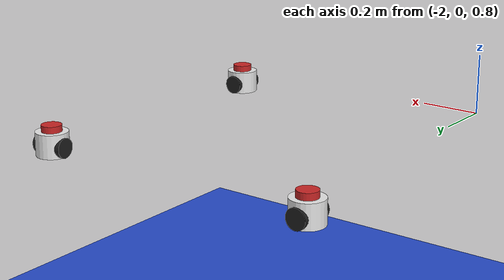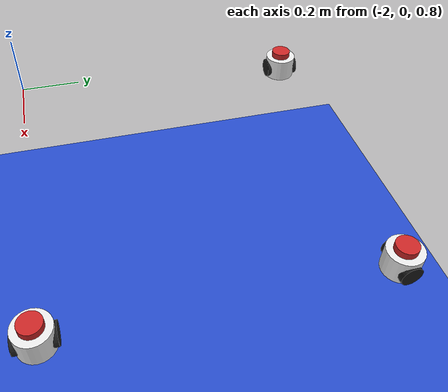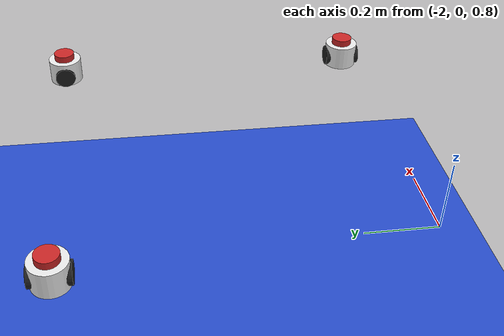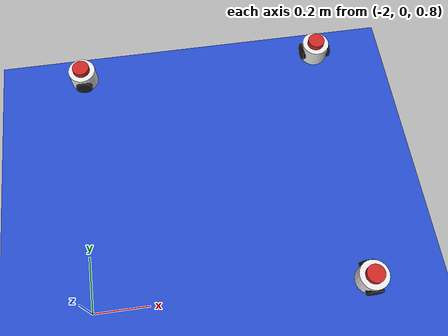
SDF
<sdf version="1.9">
 <world name="diff_drive">
  <physics name="default_physics" default="false" type="ode">
   <max_step_size>0.001</max_step_size>
   <real_time_factor>1</real_time_factor>
   <real_time_update_rate>1000</real_time_update_rate>
  </physics>
  <plugin name="ignition::gazebo::systems::Physics" filename="ignition-gazebo-physics-system"/>
  <plugin name="ignition::gazebo::systems::SceneBroadcaster" filename="ignition-gazebo-scene-broadcaster-system"/>
  <plugin name="gz::sim::systems::Sensors" filename="ignition-gazebo-sensors-system">
   <render_engine>ogre1</render_engine>
  </plugin>
  <gravity>0 0 -9.8</gravity>
  <magnetic_field>6e-06 2.3e-05 -4.2e-05</magnetic_field>
  <atmosphere type="adiabatic"/>
  <scene><ambient>0.4 0.4 0.4 1</ambient><background>0.7 0.7 0.7 1</background><shadows>true</shadows></scene>
  <model name="ground_plane">
   <static>true</static>
   <link name="link">
    <collision name="collision">
     <geometry><plane><normal>0 0 1</normal><size>100 100</size></plane></geometry>
     <surface><friction><ode><mu>100</mu><mu2>50</mu2></ode></friction></surface>
    </collision>
    <visual name="visual">
     <cast_shadows>false</cast_shadows>
     <geometry><plane><normal>0 0 1</normal><size>100 100</size></plane></geometry>
     <material>
      <script><uri>file://media/materials/scripts/gazebo.material</uri><name>Gazebo/Blue</name></script>
      <shader type="pixel"><normal_map>__default__</normal_map></shader>
      <ambient>1 1 1 1</ambient>
      <diffuse>1 1 1 1</diffuse>
      <specular>0 0 0 1</specular>
      <emissive>0 0 0 1</emissive>
     </material>
    </visual>
    <inertial>
     <mass>1</mass>
     <inertia><ixx>1</ixx><ixy>0</ixy><ixz>0</ixz><iyy>1</iyy><iyz>0</iyz><izz>1</izz></inertia>
    </inertial>
   </link>
  </model>
  <include>
   <uri>file://src/robot_sim/gazebo/kris_robot</uri>
   <name>kris_robot</name>
   <pose>-1.0 1.0 0.75 0 -0 3.14</pose>
  </include>
  <include>
   <uri>file://src/robot_sim/gazebo/kris_robot1</uri>
   <name>kris_robot1</name>
   <pose>-2.0 1.0 0.75 0 -0 3.14</pose>
  </include>
  <include>
   <uri>file://src/robot_sim/gazebo/kris_robot2</uri>
   <name>kris_robot2</name>
   <pose>-1.0 0 0.75 0 -0 3.14</pose>
  </include>
  <light name="sun" type="directional">
   <pose>0 0 10 0 -0 0</pose>
   <intensity>1</intensity>
   <direction>-0.5 0.1 -0.9</direction>
   <diffuse>0.8 0.8 0.8 1</diffuse>
   <specular>0.2 0.2 0.2 1</specular>
   <attenuation>
    <range>1000</range>
    <linear>0.01</linear>
    <constant>0.90000000000000002</constant>
    <quadratic>0.001</quadratic>
   </attenuation>
   <spot><inner_angle>0</inner_angle><outer_angle>0</outer_angle><falloff>0</falloff></spot>
  </light>
 </world>
</sdf>

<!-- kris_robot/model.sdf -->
<sdf version='1.7'>
  <model name='kris_robot1'>
    <link name='kris_robot1_base_link'>
      <pose>0 0 0 0 0 0</pose>
      <inertial>
        <mass>0.25</mass>
        <inertia>
          <ixx>0.0003223</ixx>
          <ixy>0</ixy>
          <ixz>0</ixz>
          <iyy>0.0003223</iyy>
          <iyz>0</iyz>
          <izz>0.0003781</izz>
        </inertia>
        <pose>0 0 0 0 0 0</pose>
        <origin xyz='0 0 0' rpy='0 0 0'/>
      </inertial>
      <self_collide>0</self_collide>
      <enable_wind>0</enable_wind>
      <kinematic>0</kinematic>
      <gravity>1</gravity>
      <visual name='visual'>
        <geometry>
          <cylinder>
            <length>0.08</length>
            <radius>0.055</radius>
          </cylinder>
        </geometry>
        <material>
          <script>
            <uri>file://media/materials/scripts/gazebo.material</uri>
            <name>Gazebo/White</name>
          </script>
          <shader type='pixel'>
            <normal_map>__default__</normal_map>
          </shader>
          <ambient>1 1 1 1</ambient>
          <diffuse>1 1 1 1</diffuse>
          <specular>0 0 0 1</specular>
          <emissive>0 0 0 1</emissive>
        </material>
        <pose>0 0 0.008 0 0 0</pose>
        <transparency>0</transparency>
        <cast_shadows>1</cast_shadows>
        <origin rpy='0 0 0' xyz='0 0 0'/>
      </visual>
      <collision name='collision'>
        <laser_retro>0</laser_retro>
        <max_contacts>10</max_contacts>
        <pose>0 0 0.008 0 0 0</pose>
        <geometry>
          <cylinder>
            <radius>0.055</radius>
            <length>0.08</length>
          </cylinder>
        </geometry>
        <surface>
          <friction>
            <ode>
              <mu>1</mu>
              <mu2>1</mu2>
              <fdir1>0 0 0</fdir1>
              <slip1>0</slip1>
              <slip2>0</slip2>
            </ode>
            <torsional>
              <coefficient>1</coefficient>
              <patch_radius>0</patch_radius>
              <surface_radius>0</surface_radius>
              <use_patch_radius>1</use_patch_radius>
              <ode>
                <slip>0</slip>
              </ode>
            </torsional>
          </friction>
          <bounce>
            <restitution_coefficient>0</restitution_coefficient>
            <threshold>1e+06</threshold>
          </bounce>
          <contact>
            <collide_without_contact>0</collide_without_contact>
            <collide_without_contact_bitmask>1</collide_without_contact_bitmask>
            <collide_bitmask>1</collide_bitmask>
            <ode>
              <soft_cfm>0</soft_cfm>
              <soft_erp>0.2</soft_erp>
              <kp>1e+13</kp>
              <kd>1</kd>
              <max_vel>0.01</max_vel>
              <min_depth>0</min_depth>
            </ode>
            <bullet>
              <split_impulse>1</split_impulse>
              <split_impulse_penetration_threshold>-0.01</split_impulse_penetration_threshold>
              <soft_cfm>0</soft_cfm>
              <soft_erp>0.2</soft_erp>
              <kp>1e+13</kp>
              <kd>1</kd>
            </bullet>
          </contact>
        </surface>
      </collision>
    </link>
    <link name='lidar_link'>
      <inertial>
        <mass>0.047</mass>
        <inertia>
          <ixx>2.716e-05</ixx>
          <ixy>0</ixy>
          <ixz>0</ixz>
          <iyy>1.363e-05</iyy>
          <iyz>0</iyz>
          <izz>1.363e-05</izz>
        </inertia>
        <pose>0 0 0.1 0 0 0</pose>
        <origin xyz='0 0 0' rpy='0 0 0'/>
      </inertial>
      <self_collide>0</self_collide>
      <enable_wind>0</enable_wind>
      <kinematic>0</kinematic>
      <pose>0 0 0 0 0 0</pose>
      <gravity>1</gravity>
      <visual name='visual'>
        <geometry>
          <cylinder>
            <length>0.03</length>
            <radius>0.034</radius>
          </cylinder>
        </geometry>
        <material>
          <script>
            <uri>file://media/materials/scripts/gazebo.material</uri>
            <name>Gazebo/Red</name>
          </script>
          <shader type='pixel'>
            <normal_map>__default__</normal_map>
          </shader>
          <ambient>1 0 0 1</ambient>
          <diffuse>1 0 0 1</diffuse>
          <specular>0.1 0.1 0.1 1</specular>
          <emissive>0 0 0 1</emissive>
        </material>
        <pose>0 0 0.055 0 0 0</pose>
        <transparency>0</transparency>
        <cast_shadows>1</cast_shadows>
        <origin xyz='0 0 0' rpy='0 0 0'/>
      </visual>
      <sensor name='gpu_lidar' type='gpu_lidar'>
        <pose>0 0 0.055 0 0 0</pose>
        <topic>/kris_robot1/scan</topic>
        <gz_frame_id>kris_robot1_base_link</gz_frame_id>
        <update_rate>5</update_rate>
        <enable_metrics>false</enable_metrics>
        <lidar>
          <scan>
            <horizontal>
              <samples>450</samples>
              <resolution>1</resolution>
              <min_angle>0</min_angle>
              <max_angle>6.28</max_angle>
            </horizontal>
            <vertical>
              <samples>1</samples>
              <min_angle>0</min_angle>
              <max_angle>0</max_angle>
              <resolution>1</resolution>
            </vertical>
          </scan>
          <range>
            <min>0.02</min>
            <max>12</max>
            <resolution>0.01</resolution>
          </range>
        </lidar>
      </sensor>
      <collision name='collision'>
        <laser_retro>0</laser_retro>
        <max_contacts>10</max_contacts>
        <pose>0 0 0.055 0 0 0</pose>
        <geometry>
          <cylinder>
            <radius>0.034</radius>
            <length>0.03</length>
          </cylinder>
        </geometry>
        <surface>
          <friction>
            <ode>
              <mu>1</mu>
              <mu2>1</mu2>
              <fdir1>0 0 0</fdir1>
              <slip1>0</slip1>
              <slip2>0</slip2>
            </ode>
            <torsional>
              <coefficient>1</coefficient>
              <patch_radius>0</patch_radius>
              <surface_radius>0</surface_radius>
              <use_patch_radius>1</use_patch_radius>
              <ode>
                <slip>0</slip>
              </ode>
            </torsional>
          </friction>
          <bounce>
            <restitution_coefficient>0</restitution_coefficient>
            <threshold>1e+06</threshold>
          </bounce>
          <contact>
            <collide_without_contact>0</collide_without_contact>
            <collide_without_contact_bitmask>1</collide_without_contact_bitmask>
            <collide_bitmask>1</collide_bitmask>
            <ode>
              <soft_cfm>0</soft_cfm>
              <soft_erp>0.2</soft_erp>
              <kp>1e+13</kp>
              <kd>1</kd>
              <max_vel>0.01</max_vel>
              <min_depth>0</min_depth>
            </ode>
            <bullet>
              <split_impulse>1</split_impulse>
              <split_impulse_penetration_threshold>-0.01</split_impulse_penetration_threshold>
              <soft_cfm>0</soft_cfm>
              <soft_erp>0.2</soft_erp>
              <kp>1e+13</kp>
              <kd>1</kd>
            </bullet>
          </contact>
        </surface>
      </collision>
    </link>
    <link name='lwheel'>
      <pose>0.045 0 0 -1.65698 1.57079 1.57</pose>
      <inertial>
        <mass>0.1</mass>
        <inertia>
          <ixx>5.281e-05</ixx>
          <ixy>0</ixy>
          <ixz>0</ixz>
          <iyy>3.161e-05</iyy>
          <iyz>0</iyz>
          <izz>3.781e-05</izz>
        </inertia>
        <pose>0 0 0 0 0 0</pose>
        <origin xyz='1.5708 1.5708 0' rpy='0 0.050 0.02'/>
      </inertial>
      <self_collide>0</self_collide>
      <enable_wind>0</enable_wind>
      <kinematic>0</kinematic>
      <gravity>1</gravity>
      <visual name='visual'>
        <geometry>
          <cylinder>
            <radius>0.0335</radius>
            <length>0.0265</length>
          </cylinder>
        </geometry>
        <material>
          <script>
            <uri>file://media/materials/scripts/gazebo.material</uri>
            <name>Gazebo/Black</name>
          </script>
          <shader type='pixel'>
            <normal_map>__default__</normal_map>
          </shader>
          <ambient>0 0 0 1</ambient>
          <diffuse>0 0 0 1</diffuse>
          <specular>0.1 0.1 0.1 1</specular>
          <emissive>0 0 0 1</emissive>
        </material>
        <pose>0 0 0 0 0 0</pose>
        <transparency>0</transparency>
        <cast_shadows>1</cast_shadows>
        <origin rpy='1.5708 1.5708 0' xyz='0 0.050 0.02'/>
      </visual>
      <collision name='collision'>
        <laser_retro>0</laser_retro>
        <max_contacts>10</max_contacts>
        <pose>0 0 0 0 0 0</pose>
        <geometry>
          <sphere>
            <radius>0.0335</radius>
          </sphere>
        </geometry>
        <surface>
          <friction>
            <ode>
              <mu>1</mu>
              <mu2>1</mu2>
              <fdir1>0 0 0</fdir1>
              <slip1>0</slip1>
              <slip2>0</slip2>
            </ode>
            <torsional>
              <coefficient>1</coefficient>
              <patch_radius>0</patch_radius>
              <surface_radius>0</surface_radius>
              <use_patch_radius>1</use_patch_radius>
              <ode>
                <slip>0</slip>
              </ode>
            </torsional>
          </friction>
          <bounce>
            <restitution_coefficient>0</restitution_coefficient>
            <threshold>1e+06</threshold>
          </bounce>
          <contact>
            <collide_without_contact>0</collide_without_contact>
            <collide_without_contact_bitmask>1</collide_without_contact_bitmask>
            <collide_bitmask>1</collide_bitmask>
            <ode>
              <soft_cfm>0</soft_cfm>
              <soft_erp>0.2</soft_erp>
              <kp>1e+13</kp>
              <kd>1</kd>
              <max_vel>0.01</max_vel>
              <min_depth>0</min_depth>
            </ode>
            <bullet>
              <split_impulse>1</split_impulse>
              <split_impulse_penetration_threshold>-0.01</split_impulse_penetration_threshold>
              <soft_cfm>0</soft_cfm>
              <soft_erp>0.2</soft_erp>
              <kp>1e+13</kp>
              <kd>1</kd>
            </bullet>
          </contact>
        </surface>
      </collision>
    </link>
    <link name='rwheel'>
      <pose>-0.045 0 0 -1.65698 1.57079 1.57</pose>
      <inertial>
        <mass>0.1</mass>
        <inertia>
          <ixx>5.281e-05</ixx>
          <ixy>0</ixy>
          <ixz>0</ixz>
          <iyy>3.161e-05</iyy>
          <iyz>0</iyz>
          <izz>3.781e-05</izz>
        </inertia>
        <pose>0 0 0 0 0 0</pose>
        <origin xyz='1.5708 1.5708 0' rpy='0 -0.050 0.02'/>
      </inertial>
      <self_collide>0</self_collide>
      <enable_wind>0</enable_wind>
      <kinematic>0</kinematic>
      <gravity>1</gravity>
      <visual name='visual'>
        <geometry>
          <cylinder>
            <radius>0.0335</radius>
            <length>0.0265</length>
          </cylinder>
        </geometry>
        <material>
          <script>
            <uri>file://media/materials/scripts/gazebo.material</uri>
            <name>Gazebo/Black</name>
          </script>
          <shader type='pixel'>
            <normal_map>__default__</normal_map>
          </shader>
          <ambient>0 0 0 1</ambient>
          <diffuse>0 0 0 1</diffuse>
          <specular>0.1 0.1 0.1 1</specular>
          <emissive>0 0 0 1</emissive>
        </material>
        <pose>0 0 0 0 0 0</pose>
        <transparency>0</transparency>
        <cast_shadows>1</cast_shadows>
        <origin rpy='1.5708 1.5708 0' xyz='0 -0.050 0.02'/>
      </visual>
      <collision name='collision'>
        <laser_retro>0</laser_retro>
        <max_contacts>10</max_contacts>
        <pose>0 0 0 0 0 0</pose>
        <geometry>
          <sphere>
            <radius>0.0335</radius>
          </sphere>
        </geometry>
        <surface>
          <friction>
            <ode>
              <mu>1</mu>
              <mu2>1</mu2>
              <fdir1>0 0 0</fdir1>
              <slip1>0</slip1>
              <slip2>0</slip2>
            </ode>
            <torsional>
              <coefficient>1</coefficient>
              <patch_radius>0</patch_radius>
              <surface_radius>0</surface_radius>
              <use_patch_radius>1</use_patch_radius>
              <ode>
                <slip>0</slip>
              </ode>
            </torsional>
          </friction>
          <bounce>
            <restitution_coefficient>0</restitution_coefficient>
            <threshold>1e+06</threshold>
          </bounce>
          <contact>
            <collide_without_contact>0</collide_without_contact>
            <collide_without_contact_bitmask>1</collide_without_contact_bitmask>
            <collide_bitmask>1</collide_bitmask>
            <ode>
              <soft_cfm>0</soft_cfm>
              <soft_erp>0.2</soft_erp>
              <kp>1e+13</kp>
              <kd>1</kd>
              <max_vel>0.01</max_vel>
              <min_depth>0</min_depth>
            </ode>
            <bullet>
              <split_impulse>1</split_impulse>
              <split_impulse_penetration_threshold>-0.01</split_impulse_penetration_threshold>
              <soft_cfm>0</soft_cfm>
              <soft_erp>0.2</soft_erp>
              <kp>1e+13</kp>
              <kd>1</kd>
            </bullet>
          </contact>
        </surface>
      </collision>
    </link>
    <joint name='laser_joint' type='fixed'>
      <parent>kris_robot1_base_link</parent>
      <child>lidar_link</child>
      <pose>0 0 0.05 0 0 0</pose>
    </joint>
    <joint name='left_wheel_joint' type='revolute'>
      <parent>kris_robot1_base_link</parent>
      <child>lwheel</child>
      <pose>0 0 0 0 0 0</pose>
      <axis>
        <xyz>0 0 1</xyz>
        <limit>
          <lower>-1.79769e+308</lower>
          <upper>1.79769e+308</upper>
          <effort>-1</effort>
          <velocity>-1</velocity>
        </limit>
        <dynamics>
          <spring_reference>0</spring_reference>
          <spring_stiffness>0</spring_stiffness>
          <damping>0</damping>
          <friction>0</friction>
        </dynamics>
      </axis>
      <physics>
        <ode>
          <limit>
            <cfm>0</cfm>
            <erp>0.2</erp>
          </limit>
          <suspension>
            <cfm>0</cfm>
            <erp>0.2</erp>
          </suspension>
        </ode>
      </physics>
    </joint>
    <joint name='right_wheel_joint' type='revolute'>
      <parent>kris_robot1_base_link</parent>
      <child>rwheel</child>
      <pose>0 0 0 0 0 0</pose>
      <axis>
        <xyz>0 0 1</xyz>
        <limit>
          <lower>-1.79769e+308</lower>
          <upper>1.79769e+308</upper>
          <effort>-1</effort>
          <velocity>-1</velocity>
        </limit>
        <dynamics>
          <spring_reference>0</spring_reference>
          <spring_stiffness>0</spring_stiffness>
          <damping>0</damping>
          <friction>0</friction>
        </dynamics>
      </axis>
      <physics>
        <ode>
          <limit>
            <cfm>0</cfm>
            <erp>0.2</erp>
          </limit>
          <suspension>
            <cfm>0</cfm>
            <erp>0.2</erp>
          </suspension>
        </ode>
      </physics>
    </joint>
    <static>false</static>
    <self_collide>false</self_collide>
    <plugin name='gz::sim::systems::DiffDrive' filename='ignition-gazebo-diff-drive-system'>
      <odom_publish_frequency>2</odom_publish_frequency>
      <left_joint>left_wheel_joint</left_joint>
      <right_joint>right_wheel_joint</right_joint>
      <wheel_separation>0.08</wheel_separation>
      <wheel_radius>0.0325</wheel_radius>
      <topic>/kris_robot1/cmd_vel</topic>
      <odom_topic>/kris_robot1/odom</odom_topic>
      <frame_id>kris_robot1_odom</frame_id>
      <child_frame_id>kris_robot1_base_link</child_frame_id>
      <max_linear_velocity>0.5</max_linear_velocity>
      <max_angular_velocity>0.4</max_angular_velocity>
    </plugin>
  </model>
</sdf>

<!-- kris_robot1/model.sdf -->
<sdf version='1.7'>
  <model name='kris_robot2'>
    <link name='kris_robot2_base_link'>
      <pose>0 0 0 0 0 0</pose>
      <inertial>
        <mass>0.25</mass>
        <inertia>
          <ixx>0.0003223</ixx>
          <ixy>0</ixy>
          <ixz>0</ixz>
          <iyy>0.0003223</iyy>
          <iyz>0</iyz>
          <izz>0.0003781</izz>
        </inertia>
        <pose>0 0 0 0 0 0</pose>
        <origin xyz='0 0 0' rpy='0 0 0'/>
      </inertial>
      <self_collide>0</self_collide>
      <enable_wind>0</enable_wind>
      <kinematic>0</kinematic>
      <gravity>1</gravity>
      <visual name='visual'>
        <geometry>
          <cylinder>
            <length>0.08</length>
            <radius>0.055</radius>
          </cylinder>
        </geometry>
        <material>
          <script>
            <uri>file://media/materials/scripts/gazebo.material</uri>
            <name>Gazebo/White</name>
          </script>
          <shader type='pixel'>
            <normal_map>__default__</normal_map>
          </shader>
          <ambient>1 1 1 1</ambient>
          <diffuse>1 1 1 1</diffuse>
          <specular>0 0 0 1</specular>
          <emissive>0 0 0 1</emissive>
        </material>
        <pose>0 0 0.008 0 0 0</pose>
        <transparency>0</transparency>
        <cast_shadows>1</cast_shadows>
        <origin rpy='0 0 0' xyz='0 0 0'/>
      </visual>
      <collision name='collision'>
        <laser_retro>0</laser_retro>
        <max_contacts>10</max_contacts>
        <pose>0 0 0.008 0 0 0</pose>
        <geometry>
          <cylinder>
            <radius>0.055</radius>
            <length>0.08</length>
          </cylinder>
        </geometry>
        <surface>
          <friction>
            <ode>
              <mu>1</mu>
              <mu2>1</mu2>
              <fdir1>0 0 0</fdir1>
              <slip1>0</slip1>
              <slip2>0</slip2>
            </ode>
            <torsional>
              <coefficient>1</coefficient>
              <patch_radius>0</patch_radius>
              <surface_radius>0</surface_radius>
              <use_patch_radius>1</use_patch_radius>
              <ode>
                <slip>0</slip>
              </ode>
            </torsional>
          </friction>
          <bounce>
            <restitution_coefficient>0</restitution_coefficient>
            <threshold>1e+06</threshold>
          </bounce>
          <contact>
            <collide_without_contact>0</collide_without_contact>
            <collide_without_contact_bitmask>1</collide_without_contact_bitmask>
            <collide_bitmask>1</collide_bitmask>
            <ode>
              <soft_cfm>0</soft_cfm>
              <soft_erp>0.2</soft_erp>
              <kp>1e+13</kp>
              <kd>1</kd>
              <max_vel>0.01</max_vel>
              <min_depth>0</min_depth>
            </ode>
            <bullet>
              <split_impulse>1</split_impulse>
              <split_impulse_penetration_threshold>-0.01</split_impulse_penetration_threshold>
              <soft_cfm>0</soft_cfm>
              <soft_erp>0.2</soft_erp>
              <kp>1e+13</kp>
              <kd>1</kd>
            </bullet>
          </contact>
        </surface>
      </collision>
    </link>
    <link name='lidar_link'>
      <inertial>
        <mass>0.047</mass>
        <inertia>
          <ixx>2.716e-05</ixx>
          <ixy>0</ixy>
          <ixz>0</ixz>
          <iyy>1.363e-05</iyy>
          <iyz>0</iyz>
          <izz>1.363e-05</izz>
        </inertia>
        <pose>0 0 0.1 0 0 0</pose>
        <origin xyz='0 0 0' rpy='0 0 0'/>
      </inertial>
      <self_collide>0</self_collide>
      <enable_wind>0</enable_wind>
      <kinematic>0</kinematic>
      <pose>0 0 0 0 0 0</pose>
      <gravity>1</gravity>
      <visual name='visual'>
        <geometry>
          <cylinder>
            <length>0.03</length>
            <radius>0.034</radius>
          </cylinder>
        </geometry>
        <material>
          <script>
            <uri>file://media/materials/scripts/gazebo.material</uri>
            <name>Gazebo/Red</name>
          </script>
          <shader type='pixel'>
            <normal_map>__default__</normal_map>
          </shader>
          <ambient>1 0 0 1</ambient>
          <diffuse>1 0 0 1</diffuse>
          <specular>0.1 0.1 0.1 1</specular>
          <emissive>0 0 0 1</emissive>
        </material>
        <pose>0 0 0.055 0 0 0</pose>
        <transparency>0</transparency>
        <cast_shadows>1</cast_shadows>
        <origin xyz='0 0 0' rpy='0 0 0'/>
      </visual>
      <sensor name='gpu_lidar' type='gpu_lidar'>
        <pose>0 0 0.055 0 0 0</pose>
        <topic>/kris_robot2/scan</topic>
        <gz_frame_id>kris_robot2_base_link</gz_frame_id>
        <update_rate>5</update_rate>
        <enable_metrics>false</enable_metrics>
        <lidar>
          <scan>
            <horizontal>
              <samples>450</samples>
              <resolution>1</resolution>
              <min_angle>0</min_angle>
              <max_angle>6.28</max_angle>
            </horizontal>
            <vertical>
              <samples>1</samples>
              <min_angle>0</min_angle>
              <max_angle>0</max_angle>
              <resolution>1</resolution>
            </vertical>
          </scan>
          <range>
            <min>0.02</min>
            <max>12</max>
            <resolution>0.01</resolution>
          </range>
        </lidar>
      </sensor>
      <collision name='collision'>
        <laser_retro>0</laser_retro>
        <max_contacts>10</max_contacts>
        <pose>0 0 0.055 0 0 0</pose>
        <geometry>
          <cylinder>
            <radius>0.034</radius>
            <length>0.03</length>
          </cylinder>
        </geometry>
        <surface>
          <friction>
            <ode>
              <mu>1</mu>
              <mu2>1</mu2>
              <fdir1>0 0 0</fdir1>
              <slip1>0</slip1>
              <slip2>0</slip2>
            </ode>
            <torsional>
              <coefficient>1</coefficient>
              <patch_radius>0</patch_radius>
              <surface_radius>0</surface_radius>
              <use_patch_radius>1</use_patch_radius>
              <ode>
                <slip>0</slip>
              </ode>
            </torsional>
          </friction>
          <bounce>
            <restitution_coefficient>0</restitution_coefficient>
            <threshold>1e+06</threshold>
          </bounce>
          <contact>
            <collide_without_contact>0</collide_without_contact>
            <collide_without_contact_bitmask>1</collide_without_contact_bitmask>
            <collide_bitmask>1</collide_bitmask>
            <ode>
              <soft_cfm>0</soft_cfm>
              <soft_erp>0.2</soft_erp>
              <kp>1e+13</kp>
              <kd>1</kd>
              <max_vel>0.01</max_vel>
              <min_depth>0</min_depth>
            </ode>
            <bullet>
              <split_impulse>1</split_impulse>
              <split_impulse_penetration_threshold>-0.01</split_impulse_penetration_threshold>
              <soft_cfm>0</soft_cfm>
              <soft_erp>0.2</soft_erp>
              <kp>1e+13</kp>
              <kd>1</kd>
            </bullet>
          </contact>
        </surface>
      </collision>
    </link>
    <link name='lwheel'>
      <pose>0 0.045 0 -1.65698 1.57079 -0.087623</pose>
      <inertial>
        <mass>0.1</mass>
        <inertia>
          <ixx>5.281e-05</ixx>
          <ixy>0</ixy>
          <ixz>0</ixz>
          <iyy>3.161e-05</iyy>
          <iyz>0</iyz>
          <izz>3.781e-05</izz>
        </inertia>
        <pose>0 0 0 0 0 0</pose>
        <origin xyz='1.5708 1.5708 0' rpy='0 0.050 0.02'/>
      </inertial>
      <self_collide>0</self_collide>
      <enable_wind>0</enable_wind>
      <kinematic>0</kinematic>
      <gravity>1</gravity>
      <visual name='visual'>
        <geometry>
          <cylinder>
            <radius>0.0335</radius>
            <length>0.0265</length>
          </cylinder>
        </geometry>
        <material>
          <script>
            <uri>file://media/materials/scripts/gazebo.material</uri>
            <name>Gazebo/Black</name>
          </script>
          <shader type='pixel'>
            <normal_map>__default__</normal_map>
          </shader>
          <ambient>0 0 0 1</ambient>
          <diffuse>0 0 0 1</diffuse>
          <specular>0.1 0.1 0.1 1</specular>
          <emissive>0 0 0 1</emissive>
        </material>
        <pose>0 0 0 0 0 0</pose>
        <transparency>0</transparency>
        <cast_shadows>1</cast_shadows>
        <origin rpy='1.5708 1.5708 0' xyz='0 0.050 0.02'/>
      </visual>
      <collision name='collision'>
        <laser_retro>0</laser_retro>
        <max_contacts>10</max_contacts>
        <pose>0 0 0 0 0 0</pose>
        <geometry>
          <sphere>
            <radius>0.0335</radius>
          </sphere>
        </geometry>
        <surface>
          <friction>
            <ode>
              <mu>1</mu>
              <mu2>1</mu2>
              <fdir1>0 0 0</fdir1>
              <slip1>0</slip1>
              <slip2>0</slip2>
            </ode>
            <torsional>
              <coefficient>1</coefficient>
              <patch_radius>0</patch_radius>
              <surface_radius>0</surface_radius>
              <use_patch_radius>1</use_patch_radius>
              <ode>
                <slip>0</slip>
              </ode>
            </torsional>
          </friction>
          <bounce>
            <restitution_coefficient>0</restitution_coefficient>
            <threshold>1e+06</threshold>
          </bounce>
          <contact>
            <collide_without_contact>0</collide_without_contact>
            <collide_without_contact_bitmask>1</collide_without_contact_bitmask>
            <collide_bitmask>1</collide_bitmask>
            <ode>
              <soft_cfm>0</soft_cfm>
              <soft_erp>0.2</soft_erp>
              <kp>1e+13</kp>
              <kd>1</kd>
              <max_vel>0.01</max_vel>
              <min_depth>0</min_depth>
            </ode>
            <bullet>
              <split_impulse>1</split_impulse>
              <split_impulse_penetration_threshold>-0.01</split_impulse_penetration_threshold>
              <soft_cfm>0</soft_cfm>
              <soft_erp>0.2</soft_erp>
              <kp>1e+13</kp>
              <kd>1</kd>
            </bullet>
          </contact>
        </surface>
      </collision>
    </link>
    <link name='rwheel'>
      <pose>0 -0.045 0 -1.65698 1.57079 -0.087623</pose>
      <inertial>
        <mass>0.1</mass>
        <inertia>
          <ixx>5.281e-05</ixx>
          <ixy>0</ixy>
          <ixz>0</ixz>
          <iyy>3.161e-05</iyy>
          <iyz>0</iyz>
          <izz>3.781e-05</izz>
        </inertia>
        <pose>0 0 0 0 0 0</pose>
        <origin xyz='1.5708 1.5708 0' rpy='0 -0.050 0.02'/>
      </inertial>
      <self_collide>0</self_collide>
      <enable_wind>0</enable_wind>
      <kinematic>0</kinematic>
      <gravity>1</gravity>
      <visual name='visual'>
        <geometry>
          <cylinder>
            <radius>0.0335</radius>
            <length>0.0265</length>
          </cylinder>
        </geometry>
        <material>
          <script>
            <uri>file://media/materials/scripts/gazebo.material</uri>
            <name>Gazebo/Black</name>
          </script>
          <shader type='pixel'>
            <normal_map>__default__</normal_map>
          </shader>
          <ambient>0 0 0 1</ambient>
          <diffuse>0 0 0 1</diffuse>
          <specular>0.1 0.1 0.1 1</specular>
          <emissive>0 0 0 1</emissive>
        </material>
        <pose>0 0 0 0 0 0</pose>
        <transparency>0</transparency>
        <cast_shadows>1</cast_shadows>
        <origin rpy='1.5708 1.5708 0' xyz='0 -0.050 0.02'/>
      </visual>
      <collision name='collision'>
        <laser_retro>0</laser_retro>
        <max_contacts>10</max_contacts>
        <pose>0 0 0 0 0 0</pose>
        <geometry>
          <sphere>
            <radius>0.0335</radius>
          </sphere>
        </geometry>
        <surface>
          <friction>
            <ode>
              <mu>1</mu>
              <mu2>1</mu2>
              <fdir1>0 0 0</fdir1>
              <slip1>0</slip1>
              <slip2>0</slip2>
            </ode>
            <torsional>
              <coefficient>1</coefficient>
              <patch_radius>0</patch_radius>
              <surface_radius>0</surface_radius>
              <use_patch_radius>1</use_patch_radius>
              <ode>
                <slip>0</slip>
              </ode>
            </torsional>
          </friction>
          <bounce>
            <restitution_coefficient>0</restitution_coefficient>
            <threshold>1e+06</threshold>
          </bounce>
          <contact>
            <collide_without_contact>0</collide_without_contact>
            <collide_without_contact_bitmask>1</collide_without_contact_bitmask>
            <collide_bitmask>1</collide_bitmask>
            <ode>
              <soft_cfm>0</soft_cfm>
              <soft_erp>0.2</soft_erp>
              <kp>1e+13</kp>
              <kd>1</kd>
              <max_vel>0.01</max_vel>
              <min_depth>0</min_depth>
            </ode>
            <bullet>
              <split_impulse>1</split_impulse>
              <split_impulse_penetration_threshold>-0.01</split_impulse_penetration_threshold>
              <soft_cfm>0</soft_cfm>
              <soft_erp>0.2</soft_erp>
              <kp>1e+13</kp>
              <kd>1</kd>
            </bullet>
          </contact>
        </surface>
      </collision>
    </link>
    <joint name='laser_joint' type='fixed'>
      <parent>kris_robot2_base_link</parent>
      <child>lidar_link</child>
      <pose>0 0 0.05 0 0 0</pose>
    </joint>
    <joint name='left_wheel_joint' type='revolute'>
      <parent>kris_robot2_base_link</parent>
      <child>lwheel</child>
      <pose>0 0 0 0 0 0</pose>
      <axis>
        <xyz>0 0 1</xyz>
        <limit>
          <lower>-1.79769e+308</lower>
          <upper>1.79769e+308</upper>
          <effort>-1</effort>
          <velocity>-1</velocity>
        </limit>
        <dynamics>
          <spring_reference>0</spring_reference>
          <spring_stiffness>0</spring_stiffness>
          <damping>0</damping>
          <friction>0</friction>
        </dynamics>
      </axis>
      <physics>
        <ode>
          <limit>
            <cfm>0</cfm>
            <erp>0.2</erp>
          </limit>
          <suspension>
            <cfm>0</cfm>
            <erp>0.2</erp>
          </suspension>
        </ode>
      </physics>
    </joint>
    <joint name='right_wheel_joint' type='revolute'>
      <parent>kris_robot2_base_link</parent>
      <child>rwheel</child>
      <pose>0 0 0 0 0 0</pose>
      <axis>
        <xyz>0 0 1</xyz>
        <limit>
          <lower>-1.79769e+308</lower>
          <upper>1.79769e+308</upper>
          <effort>-1</effort>
          <velocity>-1</velocity>
        </limit>
        <dynamics>
          <spring_reference>0</spring_reference>
          <spring_stiffness>0</spring_stiffness>
          <damping>0</damping>
          <friction>0</friction>
        </dynamics>
      </axis>
      <physics>
        <ode>
          <limit>
            <cfm>0</cfm>
            <erp>0.2</erp>
          </limit>
          <suspension>
            <cfm>0</cfm>
            <erp>0.2</erp>
          </suspension>
        </ode>
      </physics>
    </joint>
    <static>false</static>
    <self_collide>false</self_collide>
    <plugin name='gz::sim::systems::DiffDrive' filename='ignition-gazebo-diff-drive-system'>
      <odom_publish_frequency>2</odom_publish_frequency>
      <left_joint>left_wheel_joint</left_joint>
      <right_joint>right_wheel_joint</right_joint>
      <wheel_separation>0.08</wheel_separation>
      <wheel_radius>0.0325</wheel_radius>
      <topic>/kris_robot2/cmd_vel</topic>
      <odom_topic>/kris_robot2/odom</odom_topic>
      <frame_id>kris_robot2_odom</frame_id>
      <child_frame_id>kris_robot2_base_link</child_frame_id>
      <max_linear_velocity>0.5</max_linear_velocity>
      <max_angular_velocity>0.4</max_angular_velocity>
    </plugin>
  </model>
</sdf>

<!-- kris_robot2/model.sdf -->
<sdf version='1.7'>
  <model name='kris_robot3'>
    <link name='kris_robot3_base_link'>
      <pose>0 0 0 0 0 0</pose>
      <inertial>
        <mass>0.25</mass>
        <inertia>
          <ixx>0.0003223</ixx>
          <ixy>0</ixy>
          <ixz>0</ixz>
          <iyy>0.0003223</iyy>
          <iyz>0</iyz>
          <izz>0.0003781</izz>
        </inertia>
        <pose>0 0 0 0 0 0</pose>
        <origin xyz='0 0 0' rpy='0 0 0'/>
      </inertial>
      <self_collide>0</self_collide>
      <enable_wind>0</enable_wind>
      <kinematic>0</kinematic>
      <gravity>1</gravity>
      <visual name='visual'>
        <geometry>
          <cylinder>
            <length>0.08</length>
            <radius>0.055</radius>
          </cylinder>
        </geometry>
        <material>
          <script>
            <uri>file://media/materials/scripts/gazebo.material</uri>
            <name>Gazebo/White</name>
          </script>
          <shader type='pixel'>
            <normal_map>__default__</normal_map>
          </shader>
          <ambient>1 1 1 1</ambient>
          <diffuse>1 1 1 1</diffuse>
          <specular>0 0 0 1</specular>
          <emissive>0 0 0 1</emissive>
        </material>
        <pose>0 0 0.008 0 0 0</pose>
        <transparency>0</transparency>
        <cast_shadows>1</cast_shadows>
        <origin rpy='0 0 0' xyz='0 0 0'/>
      </visual>
      <collision name='collision'>
        <laser_retro>0</laser_retro>
        <max_contacts>10</max_contacts>
        <pose>0 0 0.008 0 0 0</pose>
        <geometry>
          <cylinder>
            <radius>0.055</radius>
            <length>0.08</length>
          </cylinder>
        </geometry>
        <surface>
          <friction>
            <ode>
              <mu>1</mu>
              <mu2>1</mu2>
              <fdir1>0 0 0</fdir1>
              <slip1>0</slip1>
              <slip2>0</slip2>
            </ode>
            <torsional>
              <coefficient>1</coefficient>
              <patch_radius>0</patch_radius>
              <surface_radius>0</surface_radius>
              <use_patch_radius>1</use_patch_radius>
              <ode>
                <slip>0</slip>
              </ode>
            </torsional>
          </friction>
          <bounce>
            <restitution_coefficient>0</restitution_coefficient>
            <threshold>1e+06</threshold>
          </bounce>
          <contact>
            <collide_without_contact>0</collide_without_contact>
            <collide_without_contact_bitmask>1</collide_without_contact_bitmask>
            <collide_bitmask>1</collide_bitmask>
            <ode>
              <soft_cfm>0</soft_cfm>
              <soft_erp>0.2</soft_erp>
              <kp>1e+13</kp>
              <kd>1</kd>
              <max_vel>0.01</max_vel>
              <min_depth>0</min_depth>
            </ode>
            <bullet>
              <split_impulse>1</split_impulse>
              <split_impulse_penetration_threshold>-0.01</split_impulse_penetration_threshold>
              <soft_cfm>0</soft_cfm>
              <soft_erp>0.2</soft_erp>
              <kp>1e+13</kp>
              <kd>1</kd>
            </bullet>
          </contact>
        </surface>
      </collision>
    </link>
    <link name='lidar_link'>
      <inertial>
        <mass>0.047</mass>
        <inertia>
          <ixx>2.716e-05</ixx>
          <ixy>0</ixy>
          <ixz>0</ixz>
          <iyy>1.363e-05</iyy>
          <iyz>0</iyz>
          <izz>1.363e-05</izz>
        </inertia>
        <pose>0 0 0.1 0 0 0</pose>
        <origin xyz='0 0 0' rpy='0 0 0'/>
      </inertial>
      <self_collide>0</self_collide>
      <enable_wind>0</enable_wind>
      <kinematic>0</kinematic>
      <pose>0 0 0 0 0 0</pose>
      <gravity>1</gravity>
      <visual name='visual'>
        <geometry>
          <cylinder>
            <length>0.03</length>
            <radius>0.034</radius>
          </cylinder>
        </geometry>
        <material>
          <script>
            <uri>file://media/materials/scripts/gazebo.material</uri>
            <name>Gazebo/Red</name>
          </script>
          <shader type='pixel'>
            <normal_map>__default__</normal_map>
          </shader>
          <ambient>1 0 0 1</ambient>
          <diffuse>1 0 0 1</diffuse>
          <specular>0.1 0.1 0.1 1</specular>
          <emissive>0 0 0 1</emissive>
        </material>
        <pose>0 0 0.055 0 0 0</pose>
        <transparency>0</transparency>
        <cast_shadows>1</cast_shadows>
        <origin xyz='0 0 0' rpy='0 0 0'/>
      </visual>
      <sensor name='gpu_lidar' type='gpu_lidar'>
        <pose>0 0 0.055 0 0 0</pose>
        <topic>/kris_robot3/scan</topic>
        <gz_frame_id>kris_robot3_base_link</gz_frame_id>
        <update_rate>5</update_rate>
        <enable_metrics>false</enable_metrics>
        <lidar>
          <scan>
            <horizontal>
              <samples>450</samples>
              <resolution>1</resolution>
              <min_angle>0</min_angle>
              <max_angle>6.28</max_angle>
            </horizontal>
            <vertical>
              <samples>1</samples>
              <min_angle>0</min_angle>
              <max_angle>0</max_angle>
              <resolution>1</resolution>
            </vertical>
          </scan>
          <range>
            <min>0.02</min>
            <max>12</max>
            <resolution>0.01</resolution>
          </range>
        </lidar>
      </sensor>
      <collision name='collision'>
        <laser_retro>0</laser_retro>
        <max_contacts>10</max_contacts>
        <pose>0 0 0.055 0 0 0</pose>
        <geometry>
          <cylinder>
            <radius>0.034</radius>
            <length>0.03</length>
          </cylinder>
        </geometry>
        <surface>
          <friction>
            <ode>
              <mu>1</mu>
              <mu2>1</mu2>
              <fdir1>0 0 0</fdir1>
              <slip1>0</slip1>
              <slip2>0</slip2>
            </ode>
            <torsional>
              <coefficient>1</coefficient>
              <patch_radius>0</patch_radius>
              <surface_radius>0</surface_radius>
              <use_patch_radius>1</use_patch_radius>
              <ode>
                <slip>0</slip>
              </ode>
            </torsional>
          </friction>
          <bounce>
            <restitution_coefficient>0</restitution_coefficient>
            <threshold>1e+06</threshold>
          </bounce>
          <contact>
            <collide_without_contact>0</collide_without_contact>
            <collide_without_contact_bitmask>1</collide_without_contact_bitmask>
            <collide_bitmask>1</collide_bitmask>
            <ode>
              <soft_cfm>0</soft_cfm>
              <soft_erp>0.2</soft_erp>
              <kp>1e+13</kp>
              <kd>1</kd>
              <max_vel>0.01</max_vel>
              <min_depth>0</min_depth>
            </ode>
            <bullet>
              <split_impulse>1</split_impulse>
              <split_impulse_penetration_threshold>-0.01</split_impulse_penetration_threshold>
              <soft_cfm>0</soft_cfm>
              <soft_erp>0.2</soft_erp>
              <kp>1e+13</kp>
              <kd>1</kd>
            </bullet>
          </contact>
        </surface>
      </collision>
    </link>
    <link name='lwheel'>
      <pose>0 0.045 0 -1.65698 1.57079 -0.087623</pose>
      <inertial>
        <mass>0.1</mass>
        <inertia>
          <ixx>5.281e-05</ixx>
          <ixy>0</ixy>
          <ixz>0</ixz>
          <iyy>3.161e-05</iyy>
          <iyz>0</iyz>
          <izz>3.781e-05</izz>
        </inertia>
        <pose>0 0 0 0 0 0</pose>
        <origin xyz='1.5708 1.5708 0' rpy='0 0.050 0.02'/>
      </inertial>
      <self_collide>0</self_collide>
      <enable_wind>0</enable_wind>
      <kinematic>0</kinematic>
      <gravity>1</gravity>
      <visual name='visual'>
        <geometry>
          <cylinder>
            <radius>0.0335</radius>
            <length>0.0265</length>
          </cylinder>
        </geometry>
        <material>
          <script>
            <uri>file://media/materials/scripts/gazebo.material</uri>
            <name>Gazebo/Black</name>
          </script>
          <shader type='pixel'>
            <normal_map>__default__</normal_map>
          </shader>
          <ambient>0 0 0 1</ambient>
          <diffuse>0 0 0 1</diffuse>
          <specular>0.1 0.1 0.1 1</specular>
          <emissive>0 0 0 1</emissive>
        </material>
        <pose>0 0 0 0 0 0</pose>
        <transparency>0</transparency>
        <cast_shadows>1</cast_shadows>
        <origin rpy='1.5708 1.5708 0' xyz='0 0.050 0.02'/>
      </visual>
      <collision name='collision'>
        <laser_retro>0</laser_retro>
        <max_contacts>10</max_contacts>
        <pose>0 0 0 0 0 0</pose>
        <geometry>
          <sphere>
            <radius>0.0335</radius>
          </sphere>
        </geometry>
        <surface>
          <friction>
            <ode>
              <mu>1</mu>
              <mu2>1</mu2>
              <fdir1>0 0 0</fdir1>
              <slip1>0</slip1>
              <slip2>0</slip2>
            </ode>
            <torsional>
              <coefficient>1</coefficient>
              <patch_radius>0</patch_radius>
              <surface_radius>0</surface_radius>
              <use_patch_radius>1</use_patch_radius>
              <ode>
                <slip>0</slip>
              </ode>
            </torsional>
          </friction>
          <bounce>
            <restitution_coefficient>0</restitution_coefficient>
            <threshold>1e+06</threshold>
          </bounce>
          <contact>
            <collide_without_contact>0</collide_without_contact>
            <collide_without_contact_bitmask>1</collide_without_contact_bitmask>
            <collide_bitmask>1</collide_bitmask>
            <ode>
              <soft_cfm>0</soft_cfm>
              <soft_erp>0.2</soft_erp>
              <kp>1e+13</kp>
              <kd>1</kd>
              <max_vel>0.01</max_vel>
              <min_depth>0</min_depth>
            </ode>
            <bullet>
              <split_impulse>1</split_impulse>
              <split_impulse_penetration_threshold>-0.01</split_impulse_penetration_threshold>
              <soft_cfm>0</soft_cfm>
              <soft_erp>0.2</soft_erp>
              <kp>1e+13</kp>
              <kd>1</kd>
            </bullet>
          </contact>
        </surface>
      </collision>
    </link>
    <link name='rwheel'>
      <pose>0 -0.045 0 -1.65698 1.57079 -0.087623</pose>
      <inertial>
        <mass>0.1</mass>
        <inertia>
          <ixx>5.281e-05</ixx>
          <ixy>0</ixy>
          <ixz>0</ixz>
          <iyy>3.161e-05</iyy>
          <iyz>0</iyz>
          <izz>3.781e-05</izz>
        </inertia>
        <pose>0 0 0 0 0 0</pose>
        <origin xyz='1.5708 1.5708 0' rpy='0 -0.050 0.02'/>
      </inertial>
      <self_collide>0</self_collide>
      <enable_wind>0</enable_wind>
      <kinematic>0</kinematic>
      <gravity>1</gravity>
      <visual name='visual'>
        <geometry>
          <cylinder>
            <radius>0.0335</radius>
            <length>0.0265</length>
          </cylinder>
        </geometry>
        <material>
          <script>
            <uri>file://media/materials/scripts/gazebo.material</uri>
            <name>Gazebo/Black</name>
          </script>
          <shader type='pixel'>
            <normal_map>__default__</normal_map>
          </shader>
          <ambient>0 0 0 1</ambient>
          <diffuse>0 0 0 1</diffuse>
          <specular>0.1 0.1 0.1 1</specular>
          <emissive>0 0 0 1</emissive>
        </material>
        <pose>0 0 0 0 0 0</pose>
        <transparency>0</transparency>
        <cast_shadows>1</cast_shadows>
        <origin rpy='1.5708 1.5708 0' xyz='0 -0.050 0.02'/>
      </visual>
      <collision name='collision'>
        <laser_retro>0</laser_retro>
        <max_contacts>10</max_contacts>
        <pose>0 0 0 0 0 0</pose>
        <geometry>
          <sphere>
            <radius>0.0335</radius>
          </sphere>
        </geometry>
        <surface>
          <friction>
            <ode>
              <mu>1</mu>
              <mu2>1</mu2>
              <fdir1>0 0 0</fdir1>
              <slip1>0</slip1>
              <slip2>0</slip2>
            </ode>
            <torsional>
              <coefficient>1</coefficient>
              <patch_radius>0</patch_radius>
              <surface_radius>0</surface_radius>
              <use_patch_radius>1</use_patch_radius>
              <ode>
                <slip>0</slip>
              </ode>
            </torsional>
          </friction>
          <bounce>
            <restitution_coefficient>0</restitution_coefficient>
            <threshold>1e+06</threshold>
          </bounce>
          <contact>
            <collide_without_contact>0</collide_without_contact>
            <collide_without_contact_bitmask>1</collide_without_contact_bitmask>
            <collide_bitmask>1</collide_bitmask>
            <ode>
              <soft_cfm>0</soft_cfm>
              <soft_erp>0.2</soft_erp>
              <kp>1e+13</kp>
              <kd>1</kd>
              <max_vel>0.01</max_vel>
              <min_depth>0</min_depth>
            </ode>
            <bullet>
              <split_impulse>1</split_impulse>
              <split_impulse_penetration_threshold>-0.01</split_impulse_penetration_threshold>
              <soft_cfm>0</soft_cfm>
              <soft_erp>0.2</soft_erp>
              <kp>1e+13</kp>
              <kd>1</kd>
            </bullet>
          </contact>
        </surface>
      </collision>
    </link>
    <joint name='laser_joint' type='fixed'>
      <parent>kris_robot3_base_link</parent>
      <child>lidar_link</child>
      <pose>0 0 0.05 0 0 0</pose>
    </joint>
    <joint name='left_wheel_joint' type='revolute'>
      <parent>kris_robot3_base_link</parent>
      <child>lwheel</child>
      <pose>0 0 0 0 0 0</pose>
      <axis>
        <xyz>0 0 1</xyz>
        <limit>
          <lower>-1.79769e+308</lower>
          <upper>1.79769e+308</upper>
          <effort>-1</effort>
          <velocity>-1</velocity>
        </limit>
        <dynamics>
          <spring_reference>0</spring_reference>
          <spring_stiffness>0</spring_stiffness>
          <damping>0</damping>
          <friction>0</friction>
        </dynamics>
      </axis>
      <physics>
        <ode>
          <limit>
            <cfm>0</cfm>
            <erp>0.2</erp>
          </limit>
          <suspension>
            <cfm>0</cfm>
            <erp>0.2</erp>
          </suspension>
        </ode>
      </physics>
    </joint>
    <joint name='right_wheel_joint' type='revolute'>
      <parent>kris_robot3_base_link</parent>
      <child>rwheel</child>
      <pose>0 0 0 0 0 0</pose>
      <axis>
        <xyz>0 0 1</xyz>
        <limit>
          <lower>-1.79769e+308</lower>
          <upper>1.79769e+308</upper>
          <effort>-1</effort>
          <velocity>-1</velocity>
        </limit>
        <dynamics>
          <spring_reference>0</spring_reference>
          <spring_stiffness>0</spring_stiffness>
          <damping>0</damping>
          <friction>0</friction>
        </dynamics>
      </axis>
      <physics>
        <ode>
          <limit>
            <cfm>0</cfm>
            <erp>0.2</erp>
          </limit>
          <suspension>
            <cfm>0</cfm>
            <erp>0.2</erp>
          </suspension>
        </ode>
      </physics>
    </joint>
    <static>false</static>
    <self_collide>false</self_collide>
    <plugin name='gz::sim::systems::DiffDrive' filename='ignition-gazebo-diff-drive-system'>
      <odom_publish_frequency>2</odom_publish_frequency>
      <left_joint>left_wheel_joint</left_joint>
      <right_joint>right_wheel_joint</right_joint>
      <wheel_separation>0.08</wheel_separation>
      <wheel_radius>0.0325</wheel_radius>
      <topic>/kris_robot3/cmd_vel</topic>
      <odom_topic>/kris_robot3/odom</odom_topic>
      <frame_id>kris_robot3_odom</frame_id>
      <child_frame_id>kris_robot3_base_link</child_frame_id>
      <max_linear_velocity>0.5</max_linear_velocity>
      <max_angular_velocity>0.4</max_angular_velocity>
    </plugin>
  </model>
</sdf>
